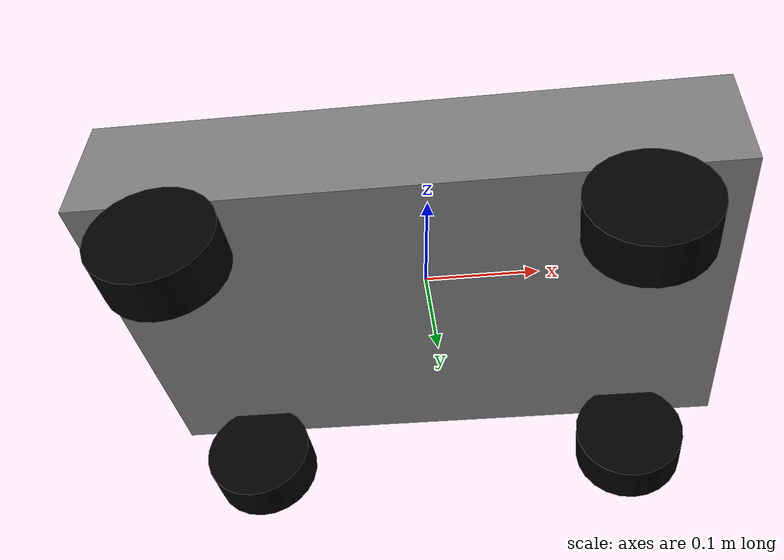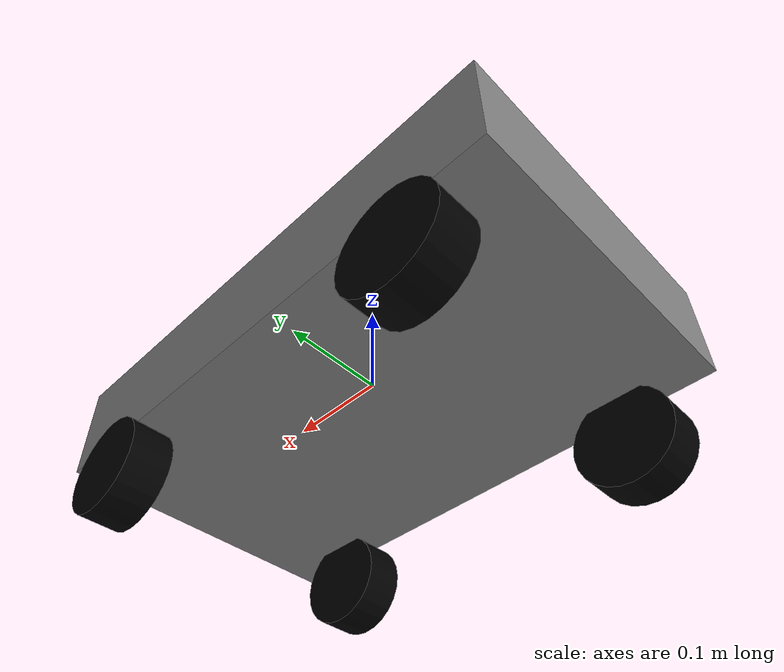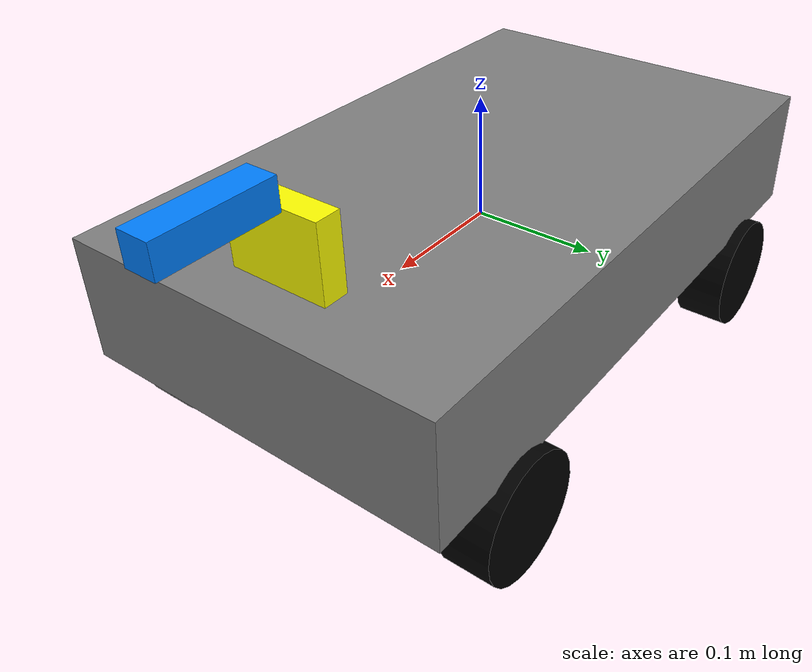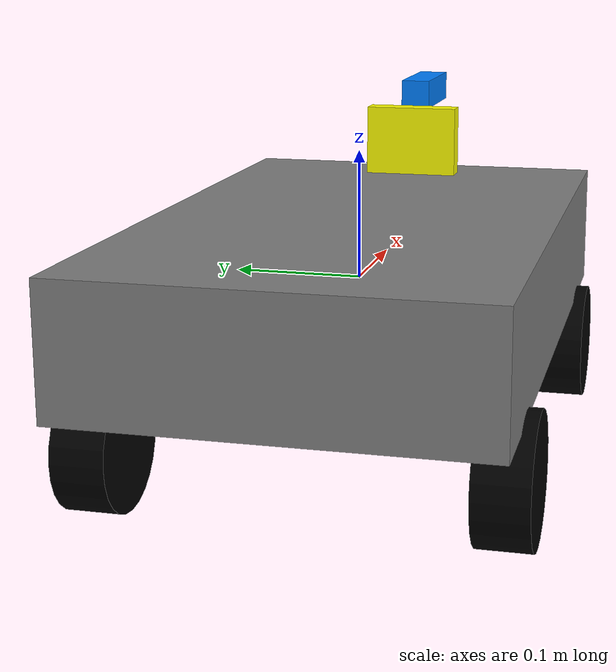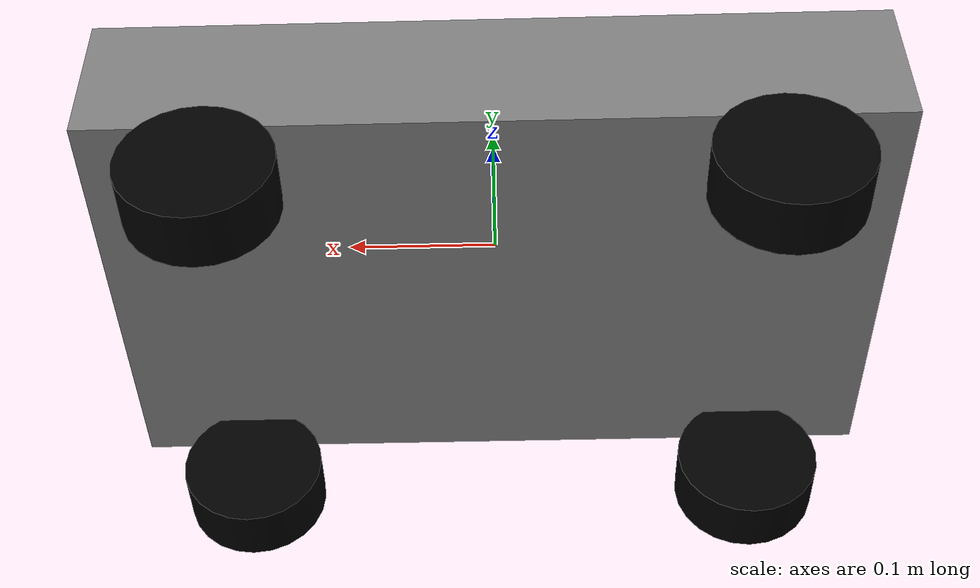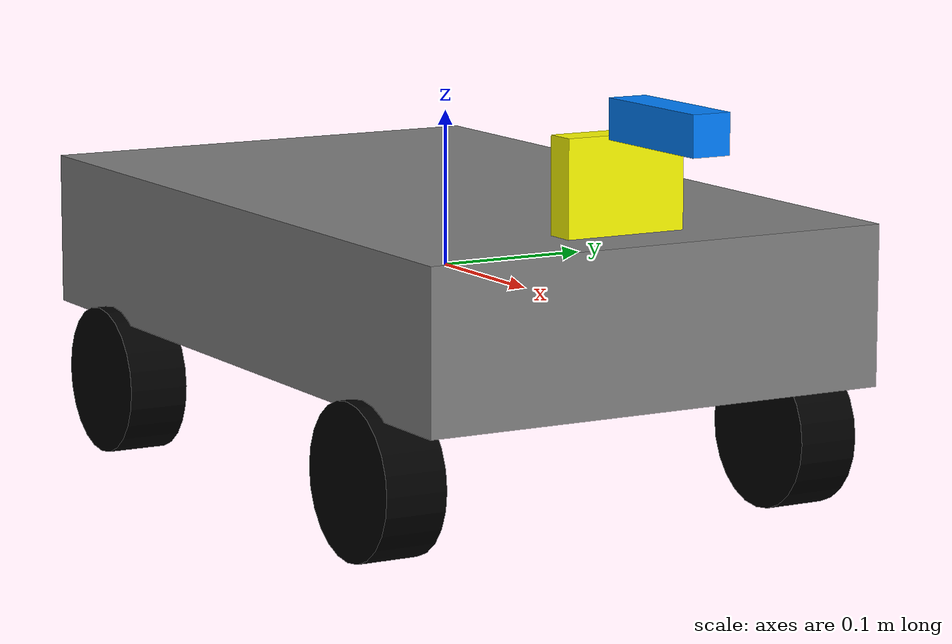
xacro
<?xml version="1.0"?>
<!-- File: resource/car.xacro -->
<!-- Description: Xacro file with 4WD and front steering control for ROS and Gazebo simulation -->
<robot xmlns:xacro="http://ros.org/wiki/xacro" name="car_model">

  <!-- Defining materials for visual elements -->
  <material name="Gray">
    <color rgba="0.5 0.5 0.5 1.0"/>
  </material>
  <material name="Black">
    <color rgba="0.0 0.0 0.0 1.0"/>
  </material>
  <material name="Yellow">
    <color rgba="1.0 1.0 0.0 1.0"/>
  </material>
  <material name="Blue">
    <color rgba="0.0 0.5 1.0 1.0"/>
  </material>

  <!-- Parameters adjusted according to the actual vehicle -->
  <xacro:property name="wheelbase" value="0.350"/>         <!-- Wheelbase: 350mm -->
  <xacro:property name="track_width" value="0.290"/>       <!-- track_width: 290mm -->
  <xacro:property name="chassis_length" value="0.515"/>    <!-- length: 515mm -->
  <xacro:property name="chassis_width" value="0.310"/>     <!-- width: 310mm -->
  <xacro:property name="chassis_height" value="0.100"/>    <!-- heigth: 100mm (降低) -->
  <xacro:property name="chassis_ground_clearance" value="0.040"/> <!-- Ground Clearance: 40mm -->
  <!-- Vehicle control parameters -->
  <xacro:property name="max_steering_angle" value="0.5236"/>  <!-- 30 degrees in radians -->
  <xacro:property name="max_wheel_speed" value="10.0"/>       <!-- Max wheel angular velocity -->

  <!-- Wheel parameter adjustment -->
  <xacro:property name="wheel_radius" value="0.0485"/>     <!-- Wheel radius: 97mm diameter -->
  <xacro:property name="wheel_width" value="0.040"/>       <!-- Tire width: 40mm -->

  <!-- Camera parameters (RealSense D435i) -->
  <xacro:property name="camera_fov" value="69.4"/>
  <xacro:property name="camera_width" value="1280"/>
  <xacro:property name="camera_height" value="720"/>
  <xacro:property name="camera_clip_near" value="0.1"/>
  <xacro:property name="camera_clip_far" value="10.0"/>

  <!-- Definition of chassis -->
  <link name="chassis">
    <visual>
      <geometry>
        <box size="${chassis_length} ${chassis_width} ${chassis_height}"/>
      </geometry>
      <material name="Gray"/>
    </visual>
    <collision>
      <geometry>
        <box size="${chassis_length} ${chassis_width} ${chassis_height}"/>
      </geometry>
    </collision>
    <inertial>
      <mass value="3.65"/> <!-- Body quality: 3.65kg -->
      <inertia ixx="0.083" iyy="0.083" izz="0.083" ixy="0.0" ixz="0.0" iyz="0.0"/>
    </inertial>
  </link>

  <!-- Steering knuckle macro for front wheels -->
  <xacro:macro name="steering_knuckle" params="prefix x y">
    <link name="${prefix}_steering_knuckle">
      <visual>
        <geometry>
          <cylinder radius="0.015" length="0.020"/>
        </geometry>
        <material name="Gray"/>
      </visual>
      <inertial>
        <mass value="0.1"/>
        <inertia ixx="0.001" iyy="0.001" izz="0.001" ixy="0.0" ixz="0.0" iyz="0.0"/>
      </inertial>
    </link>
    <joint name="${prefix}_steering_joint" type="revolute">
      <parent link="chassis"/>
      <child link="${prefix}_steering_knuckle"/>
      <origin xyz="${x} ${y} ${-chassis_height/2 - chassis_ground_clearance}" rpy="0 0 0"/>
      <axis xyz="0 0 1"/>
      <limit lower="-${max_steering_angle}" upper="${max_steering_angle}" effort="10" velocity="1.0"/>
    </joint>
  </xacro:macro>

  <!-- Driving wheel macro for all wheels -->
  <xacro:macro name="driving_wheel" params="prefix parent_link x y z">
    <link name="${prefix}_wheel">
      <visual>
        <geometry>
          <cylinder radius="${wheel_radius}" length="${wheel_width}"/>
        </geometry>
        <material name="Black"/>
      </visual>
      <collision>
        <geometry>
          <cylinder radius="${wheel_radius}" length="${wheel_width}"/>
        </geometry>
      </collision>
      <inertial>
        <mass value="0.3"/> <!-- Wheel quality: 0.3kg -->
        <inertia ixx="0.0012" iyy="0.0012" izz="0.0012" ixy="0.0" ixz="0.0" iyz="0.0"/>
      </inertial>
    </link>
    <joint name="${prefix}_wheel_joint" type="continuous">
      <parent link="${parent_link}"/>
      <child link="${prefix}_wheel"/>
      <origin xyz="${x} ${y} ${z}" rpy="1.5708 0 0"/>
      <axis xyz="0 0 1"/>
    </joint>
  </xacro:macro>

 <!-- Create front steering knuckles -->
  <xacro:steering_knuckle prefix="fl" x="${wheelbase/2}" y="${track_width/2}"/>
  <xacro:steering_knuckle prefix="fr" x="${wheelbase/2}" y="-${track_width/2}"/>

  <!-- Create front wheels (steered) -->
  <xacro:driving_wheel prefix="fl" parent_link="fl_steering_knuckle" x="0" y="0" z="0"/>
  <xacro:driving_wheel prefix="fr" parent_link="fr_steering_knuckle" x="0" y="0" z="0"/>

  <!-- Create rear wheels (fixed) -->
  <xacro:driving_wheel prefix="rl" parent_link="chassis" x="-${wheelbase/2}" y="${track_width/2}" z="${-chassis_height/2 - chassis_ground_clearance}"/>
  <xacro:driving_wheel prefix="rr" parent_link="chassis" x="-${wheelbase/2}" y="-${track_width/2}" z="${-chassis_height/2 - chassis_ground_clearance}"/>

  <!-- Camera bracket link -->
  <link name="camera_mount">
    <visual>
      <geometry>
        <box size="0.020 0.080 0.060"/> <!-- Camera bracket -->
      </geometry>
      <material name="Yellow"/>
    </visual>
  </link>
  <joint name="camera_mount_joint" type="fixed">
    <parent link="chassis"/>
    <child link="camera_mount"/>
    <!-- Camera bracket position: center of the front end of the vehicle -->
    <origin xyz="${chassis_length/2 - 0.050} 0 ${chassis_height/2 + 0.030}" rpy="0 0 0"/>
  </joint>

  <!-- Camera Link -->
  <link name="camera_link">
    <visual>
      <geometry>
        <box size="0.090 0.025 0.025"/> <!-- RealSense D435i size -->
      </geometry>
      <material name="Blue"/>
    </visual>
  </link>
  <joint name="camera_joint" type="fixed">
    <parent link="camera_mount"/>
    <child link="camera_link"/>
    <!-- Camera position: mounted on a bracket -->
    <origin xyz="0.055 0 0.040" rpy="0 0 0"/>
  </joint>

  <!-- Gazebo Camera Sensor Configuration -->
  <gazebo reference="camera_link">
    <sensor name="front_camera" type="camera">
      <always_on>true</always_on>
      <update_rate>30.0</update_rate>
      <camera>
        <horizontal_fov>${camera_fov * 3.14159 / 180}</horizontal_fov>
        <image>
          <width>${camera_width}</width>
          <height>${camera_height}</height>
          <format>R8G8B8</format>
        </image>
        <clip>
          <near>${camera_clip_near}</near>
          <far>${camera_clip_far}</far>
        </clip>
      </camera>
      <plugin name="camera_controller" filename="libgazebo_ros_camera.so">
        <ros>
          <namespace>/</namespace>
          <remapping>image_raw:=/camera/image_raw</remapping>
          <remapping>camera_info:=/camera/camera_info</remapping>
        </ros>
      </plugin>
    </sensor>
  </gazebo>

  <!-- IMU sensor configuration -->
  <gazebo reference="chassis">
    <sensor name="imu_sensor" type="imu">
      <always_on>true</always_on>
      <update_rate>200.0</update_rate>
      <imu>
        <topic>/imu/data_raw</topic>
      </imu>
      <plugin name="imu_controller" filename="libgazebo_ros_imu.so">
        <ros>
          <namespace>/</namespace>
          <remapping>imu/data_raw:=/imu/data_raw</remapping>
        </ros>
      </plugin>
    </sensor>
  </gazebo>

  <!-- 4WD Vehicle Control Plugin -->
  <gazebo>
    <plugin name="4wd_control" filename="libgazebo_ros_joint_state_publisher.so">
      <ros>
        <namespace>/</namespace>
        <remapping>joint_states:=/joint_states</remapping>
      </ros>
      <update_rate>50.0</update_rate>
      <joint_name>fl_wheel_joint</joint_name>
      <joint_name>fr_wheel_joint</joint_name>
      <joint_name>rl_wheel_joint</joint_name>
      <joint_name>rr_wheel_joint</joint_name>
      <joint_name>fl_steering_joint</joint_name>
      <joint_name>fr_steering_joint</joint_name>
    </plugin>
  </gazebo>

 <!-- Simple Vehicle Model Control Plugin -->
  <gazebo>
    <plugin name="vehicle_controller" filename="libgazebo_ros_planar_move.so">
      <ros>
        <namespace>/</namespace>
        <remapping>cmd_vel:=/cmd_vel</remapping>
        <remapping>odom:=/odom</remapping>
      </ros>
      <update_rate>100.0</update_rate>
      <publish_odom>true</publish_odom>
      <publish_odom_tf>true</publish_odom_tf>
      <odometry_frame>odom</odometry_frame>
      <robot_base_frame>chassis</robot_base_frame>
      <publish_wheel_tf>true</publish_wheel_tf>
    </plugin>
  </gazebo>

 <!-- Wheel Joint Position Controllers -->
  <gazebo>
    <plugin name="joint_state_controller" filename="libgazebo_ros_joint_pose_trajectory.so">
      <ros>
        <namespace>/</namespace>
      </ros>
      <update_rate>50.0</update_rate>
    </plugin>
  </gazebo>

  <!-- Body material settings -->
  <gazebo reference="chassis">
    <material>Gazebo/Gray</material>
  </gazebo>

  <!-- Wheel material and friction settings -->
  <gazebo reference="fl_wheel">
    <material>Gazebo/Black</material>
    <mu1>1.0</mu1>
    <mu2>1.0</mu2>
  </gazebo>
  <gazebo reference="fr_wheel">
    <material>Gazebo/Black</material>
    <mu1>1.0</mu1>
    <mu2>1.0</mu2>
  </gazebo>
  <gazebo reference="rl_wheel">
    <material>Gazebo/Black</material>
    <mu1>1.0</mu1>
    <mu2>1.0</mu2>
  </gazebo>
  <gazebo reference="rr_wheel">
    <material>Gazebo/Black</material>
    <mu1>1.0</mu1>
    <mu2>1.0</mu2>
  </gazebo>

  <!-- Steering knuckle materials -->
  <gazebo reference="fl_steering_knuckle">
    <material>Gazebo/Gray</material>
  </gazebo>
  <gazebo reference="fr_steering_knuckle">
    <material>Gazebo/Gray</material>
  </gazebo>

</robot>
